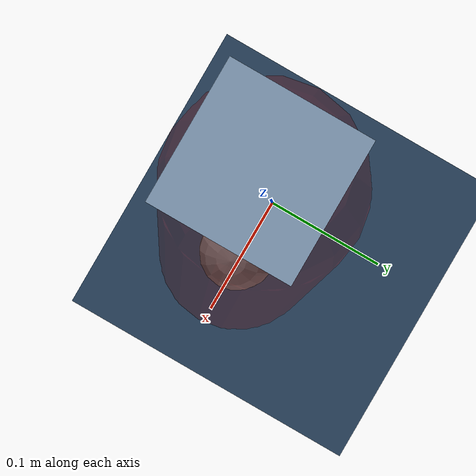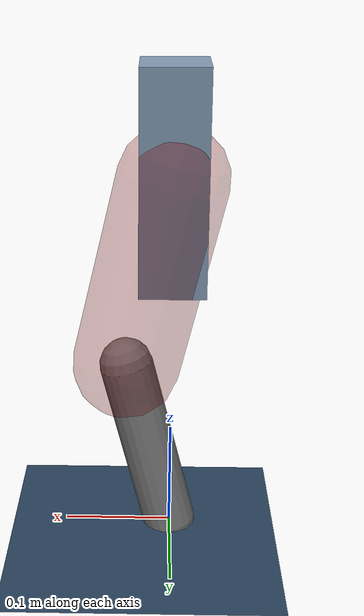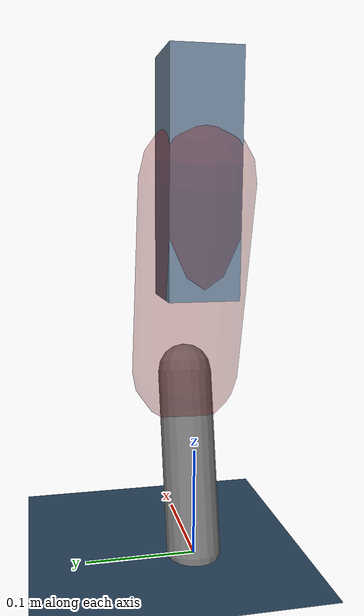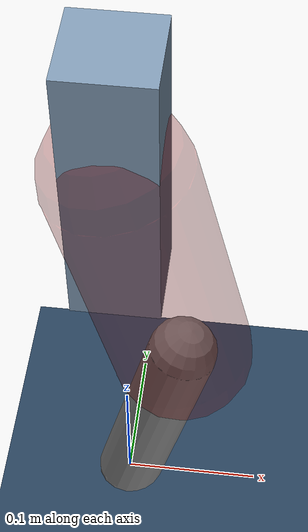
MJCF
<mujoco model="Hopper2D">
	<compiler inertiafromgeom="true" angle="radian" />
	<option timestep="0.001" integrator="implicit" cone="elliptic" solver="Newton" tolerance="1e-10" />

	<default>
		<geom contype="1" conaffinity="1" condim="3" friction="2 0.005 0.0001" solref="0.005 1" />
		<joint limited="true" damping="0.1" />
	</default>

	<asset>
		<texture name="skybox" type="skybox" builtin="gradient" rgb1=".4 .6 .8" rgb2="0 0 0" width="800" height="800" />
		<texture name="grid" type="2d" builtin="checker" rgb1=".1 .2 .3" rgb2=".2 .3 .4" width="300" height="300" mark="edge" markrgb=".2 .3 .4" />
		<material name="ground" texture="grid" texrepeat="1 1" texuniform="true" reflectance="0.1" />
		<material name="leg" rgba="0.5 0.6 0.7 1" />
	</asset>

	<worldbody>

		<geom name="floor" type="plane" size="5 5 0.25" material="ground" />

		<light directional="false" diffuse="0.8 0.8 0.8" specular="0.3 0.3 0.3" pos="0 0 2" dir="0 0 -1" />
		<light mode="targetbodycom" target="base" directional="false" diffuse="0.8 0.8 0.8" specular="0.3 0.3 0.3" pos="0 0 2" dir="0 0 -1" />

		<camera name="fixed" pos="0 -2 1" xyaxes="1 0 0 0 0 1" />
		<camera name="tracking" mode="trackcom" pos="0 -3 1" />

		<body name="root" pos="0 0 0.3408611109395024">
			<joint name="slide_x" type="slide" axis="1 0 0" range="-100 100" />
			<joint name="slide_z" type="slide" axis="0 0 1" range="0 10" />

			<body name="base" pos="0 0 0">
				<geom name="torso" type="box" size="0.03 0.03 0.1" mass="3.5570000000000004" material="leg" />

				<body name="link1" pos="0 0 0" euler="0 1.338237157355394 0">
					<joint type="hinge" axis="0 -1 0" pos="0 0 0" name="hinge1" limited="true" range="-3.14 3.14" stiffness="0" damping="0.1" />
					<geom name="thigh" type="capsule" fromto="0 0 0 0.1803609005377962 0 0" size="0.05" rgba="0.5 0 0 0.3" mass="0.6813661612907108" />

					<body name="link2" pos="0.1803609005377962 0 0" euler="0 0.47883869771206106 0">
						<joint type="hinge" axis="0 -1 0" pos="0 0 0" name="hinge2" limited="true" range="-3.14 3.14" stiffness="0" damping="0.1" />
						<geom name="shank" type="capsule" fromto="0 0 0 0.1705002104017062 0 0" size="0.025" mass="0.375700168321365" />

					</body>
				</body>
			</body>
		</body>
	</worldbody>

	<actuator>
		<motor name="torque1" joint="hinge1" ctrlrange="-163.65154041192798 163.65154041192798" ctrllimited="true" gear="1" />
		<motor name="torque2" joint="hinge2" ctrlrange="-61.725022055529735 61.725022055529735" ctrllimited="true" gear="1" />
	</actuator>
</mujoco>
